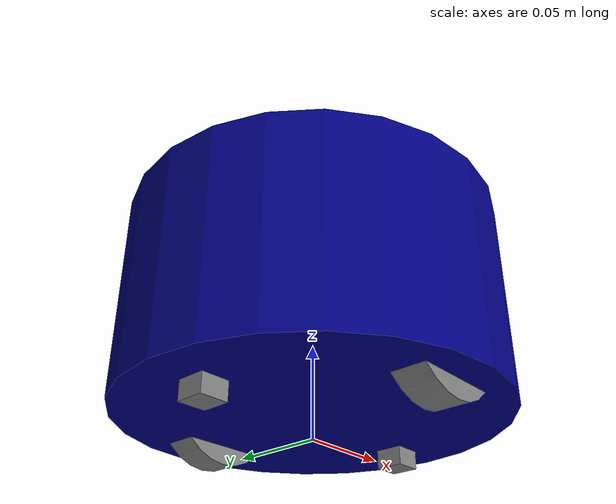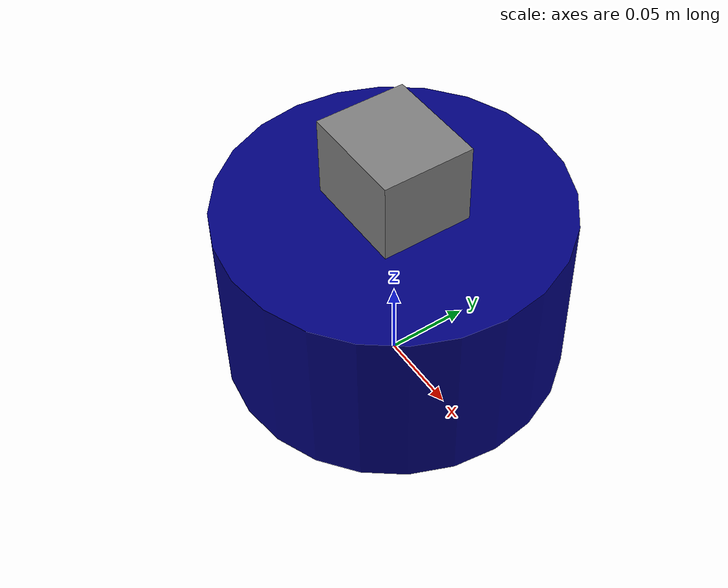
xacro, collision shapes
<?xml version="1.0"?>
<robot name="wrg_bot" xmlns:xacro="http://www.ros.org/wiki/xacro">

    <xacro:include filename="common_properties.xacro" />

    <!-- create variable by xacro -->
    <xacro:property name="base_radius" value="0.1" />
    <xacro:property name="base_length" value="0.109" />
    <xacro:property name="wheel_radius" value="0.033" />
    <xacro:property name="wheel_length" value="0.0178" />
    <xacro:property name="caster_length" value="0.015" />
    <xacro:property name="caster_width" value="0.015" />
    <xacro:property name="caster_height" value="0.016" />
    <xacro:property name="lidar_length" value="0.063" />
    <xacro:property name="lidar_width" value="0.05399" />
    <xacro:property name="lidar_height" value="0.0485" />

    <link name="base_footprint" />

    <!-- create base link(rigit part) -->
    <link name="base_link">
        <visual>
            <origin xyz="${-base_radius} ${-base_radius+0.0089} 0" rpy="${pi / 2} 0 ${pi / 2}"/>
            <geometry>
                <mesh filename="$(find my_robot_description)/meshes/base.STL" scale="0.001 0.001 0.001"/>
            </geometry>
            <material name="blue" />
        </visual>

        <collision>
            <origin xyz="0 0 ${base_length/2}" rpy="0 0 0"/>
            <geometry>
                <cylinder radius="${base_radius}" length="${base_length}" />
            </geometry>
        </collision>

        <xacro:cylinder_inertia m="0.04" r="${2*base_radius}" l="${2*base_length}"
                                    xyz="0 0 ${base_length/2}" rpy="0 0 0" />

    </link>

    <!-- create function for wheel link -->
    <xacro:macro name="wheel_link" params="prefix">
        <link name="${prefix}_wheel_link">
            <visual>
                <geometry>
                    <mesh filename="$(find my_robot_description)/meshes/wheel.STL" scale="0.001 0.001 0.001"/>
                </geometry>
                <origin xyz="${wheel_radius} ${-wheel_length/2} ${-wheel_radius}" rpy="0 0 ${pi / 2}" /> <!-- use pi by xacro -->
                <material name="grey" />
            </visual>

            <collision>
                <geometry>
                    <cylinder radius="${wheel_radius}" length="${wheel_length}" />
                </geometry>
                <origin xyz="0 0 0" rpy="${pi / 2} 0 0" /> <!-- use pi by xacro -->
            </collision>

            <xacro:cylinder_inertia m="0.04" r="${2*wheel_radius}" l="${2*wheel_length}"
                                    xyz="0 0 0" rpy="${pi / 2} 0 0" />

        </link>
    </xacro:macro>

    <!-- use function wheel link -->
    <xacro:wheel_link prefix="right"/>
    <xacro:wheel_link prefix="left"/>

    <!-- create caster wheel link(rigit part) -->
    <xacro:macro name="caster_wheel_link" params="prefix">
        <link name="${prefix}_caster_wheel_link">
            <visual>
                <geometry>
                    <mesh filename="$(find my_robot_description)/meshes/caster_wheel.STL" scale="0.001 0.001 0.001"/>
                </geometry>
                <origin xyz="${- caster_length / 2} ${(- caster_width / 2) - 0.004} 0" rpy="${pi} 0 ${pi / 2}" />
                <material name="grey" />
            </visual>

            <collision>
                <geometry>
                    <box size="${caster_length} ${caster_width} ${caster_height}" /> <!-- use variable -->
                </geometry>
                <origin xyz="0 0 ${-caster_height/2}" rpy="0 0 0" />
            </collision>

            <xacro:box_inertia m="0.02" l="${2*caster_length}" w="${2*caster_width}" h="${2*caster_height}"
                            xyz="0 0 ${-caster_height/2}" rpy="0 0 0" />

        </link>
    </xacro:macro>

    <xacro:caster_wheel_link prefix="front"/>
    <xacro:caster_wheel_link prefix="back"/>

    <link name="lidar_link">
        <visual>
            <origin xyz="${(-lidar_length / 2) - 0.025} ${(-lidar_width / 2)-0.005} ${(-lidar_height/2)-0.01}" rpy="${pi/2} 0 ${pi/2}"/>
            <geometry>
                <mesh filename="$(find my_robot_description)/meshes/ld06.STL" scale="0.001 0.001 0.001"/>
            </geometry>
            <material name="grey" />
        </visual>

        <collision>
            <origin xyz="0 0 0" rpy="0 0 0"/>
            <geometry>
                <box size="${lidar_length} ${lidar_width} ${lidar_height}" /> <!-- use variable -->
            </geometry>
        </collision>

        <xacro:box_inertia m="5.0" l="${2*lidar_length}" w="${2*lidar_width}" h="${2*lidar_height}"
                           xyz="0 0 0" rpy="0 0 0" />

    </link>

    <!-- create base joint -->
    <joint name="base_joint" type="fixed">
        <parent link="base_footprint" />
        <child link="base_link" />
        <origin xyz="0 0 ${(caster_height-0.006)}" rpy="0 0 0" />
    </joint>

    <!-- create base right wheel joint -->
    <joint name="base_right_wheel_joint" type="continuous">
        <parent link="base_link" />
        <child link="right_wheel_link" />
        <origin xyz="0 ${(-((base_radius*2) + wheel_length) / 2.0) + 0.02617 + 0.0089} 0.02297" rpy="0 0 0" /> <!-- -base_length / 4.0 = -0.15 -->
        <axis xyz="0 1 0" />
    </joint>

    <!-- create base left wheel joint -->
    <joint name="base_left_wheel_joint" type="continuous">
        <parent link="base_link" />
        <child link="left_wheel_link" />
        <origin xyz="0 ${(((base_radius*2) + wheel_length) / 2.0) - 0.02617 - 0.018 + 0.0089} 0.02297" rpy="0 0 0" />
        <axis xyz="0 1 0" />
    </joint>

    <!-- create base front caster wheel joint -->
    <joint name="base_front_caster_wheel_joint" type="fixed">
        <parent link="base_link" />
        <child link="front_caster_wheel_link" />
        <origin xyz="0.07 0 0.006" rpy="0 0 0" /> <!-- -base_length / 2.0 = 0.2 -->
    </joint>

    <!-- create base back caster wheel joint -->
    <joint name="base_back_caster_wheel_joint" type="fixed">
        <parent link="base_link" />
        <child link="back_caster_wheel_link" />
        <origin xyz="-0.07 0 0.006" rpy="0 0 0" /> <!-- -base_length / 2.0 = 0.2 -->
    </joint>

    <!-- create lidar joint -->
    <joint name="lidar_joint" type="fixed">
        <parent link="base_link" />
        <child link="lidar_link" />
        <origin xyz="0 0 ${(base_length - 0.01) + 0.01 + (lidar_height/2)} " rpy="0 0 0" />
    </joint>

    <xacro:include filename="wrg_bot_gazebo.xacro" />

</robot>

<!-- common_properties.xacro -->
<!-- This file for include to my_robot.urdf.xacro file -->

<!-- Don't put name in command properties because it already have name in my_robot.urdf.xacro file -->
<robot xmlns:xacro="http://www.ros.org/wiki/xacro">

    <material name="blue">
        <color rgba="0 0 0.5 1" />
    </material>

    <material name="grey">
        <color rgba="0.5 0.5 0.5 1" />
    </material>

    <material name="orange">
        <color rgba="0.9 0.32 0 1" />
    </material>

    <material name="yellow">
        <color rgba="1.0 0.76 0.03 1" />
    </material>

    <!-- create function inertial tag for define property physic in link such as inetia -->
    <xacro:macro name="box_inertia" params="m l w h xyz rpy" > <!-- m = mass(kg), l = length, w = width, h = height -->
        <inertial>
            <origin xyz="${xyz}" rpy="${rpy}"/>
            <mass value="${m}" />
            <!-- inertia formula of solid box -->
            <inertia ixx="${(m/12)*(h*h + l*l)}" ixy="0" ixz="0"
                     iyy="${(m/12)*(w*w + l*l)}" iyz="0"
                     izz="${(m/12)*(w*w + h*h)}" />
        </inertial>
    </xacro:macro>

    <xacro:macro name="cylinder_inertia" params="m r l xyz rpy" > <!-- m = mass(kg), r = radius, l = lenght -->
        <inertial>
            <origin xyz="${xyz}" rpy="${rpy}"/>
            <mass value="${m}" />
            <inertia ixx="${(m/12)*(3*r*r + l*l)}" ixy="0" ixz="0"
                     iyy="${(m/12)*(3*r*r + l*l)}" iyz="0"
                     izz="${(m/2)*(r*r)}" />
        </inertial>
    </xacro:macro>

    <xacro:macro name="sphere_inertia" params="m r xyz rpy" >
        <inertial>
            <origin xyz="${xyz}" rpy="${rpy}"/>
            <mass value="${m}" />
            <inertia ixx="${(2/5)*m*r*r}" ixy="0" ixz="0"
                     iyy="${(2/5)*m*r*r}" iyz="0"
                     izz="${(2/5)*m*r*r}" />
        </inertial>
    </xacro:macro>

</robot>
